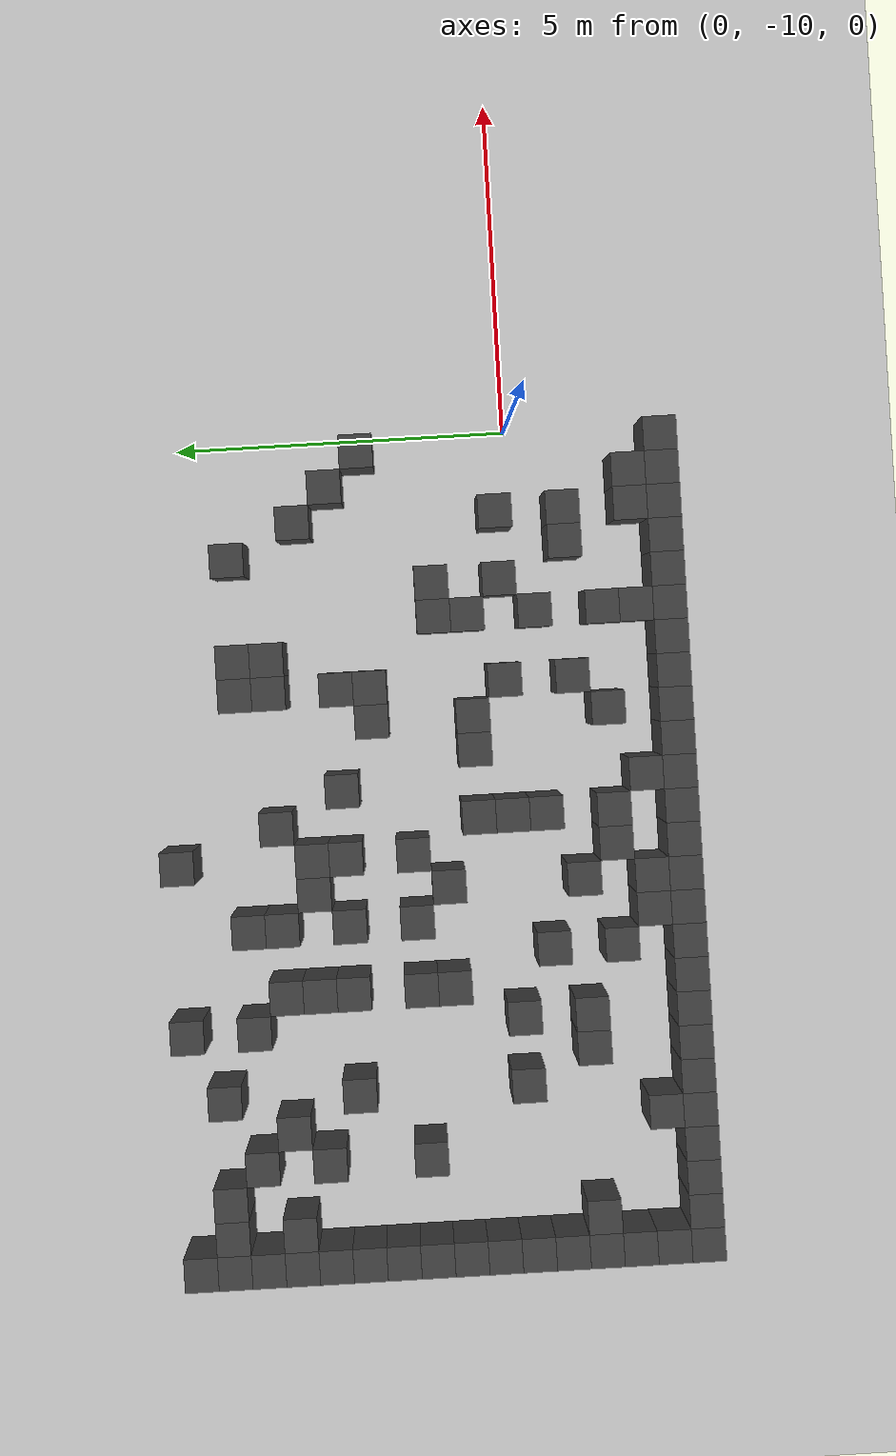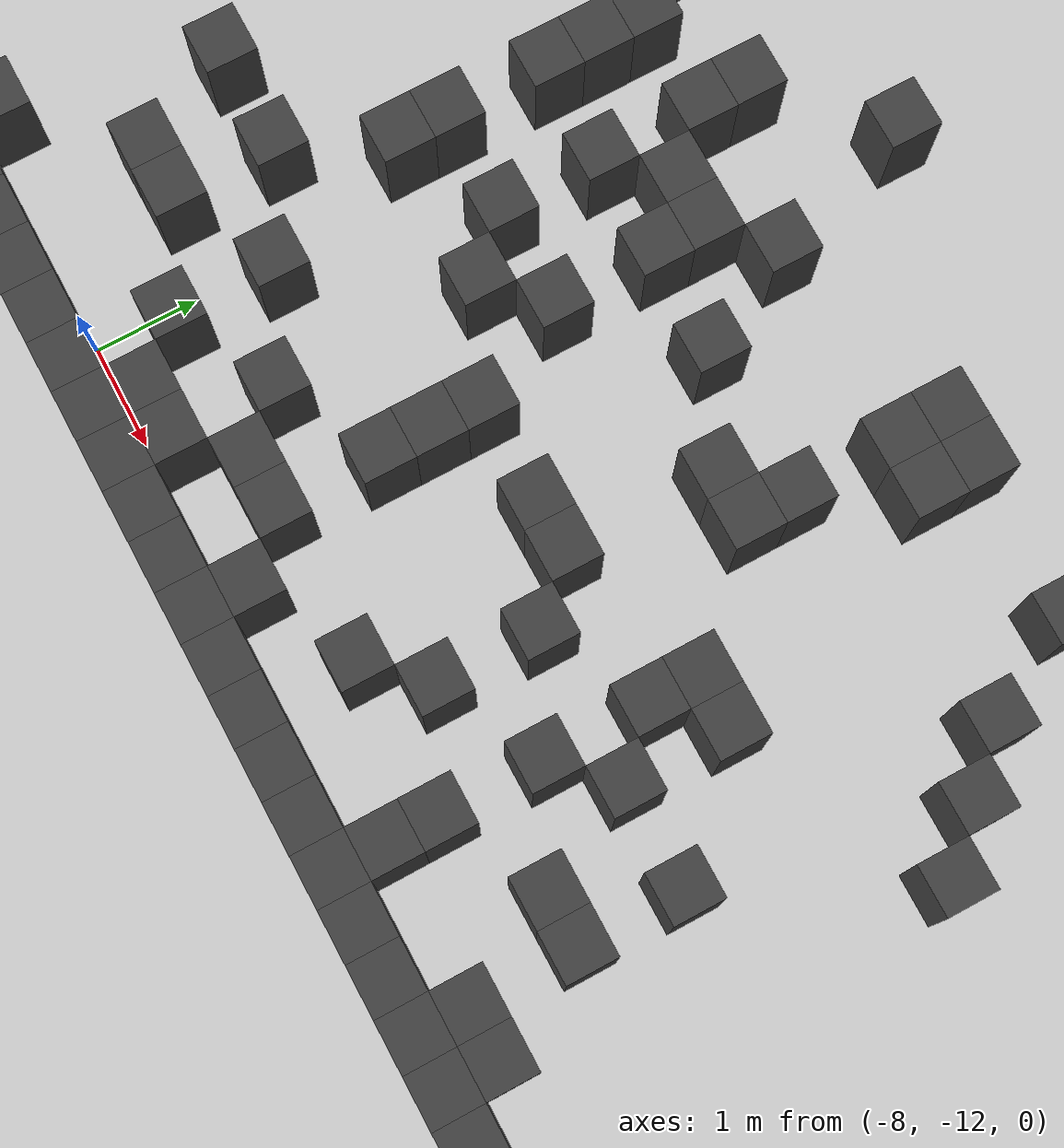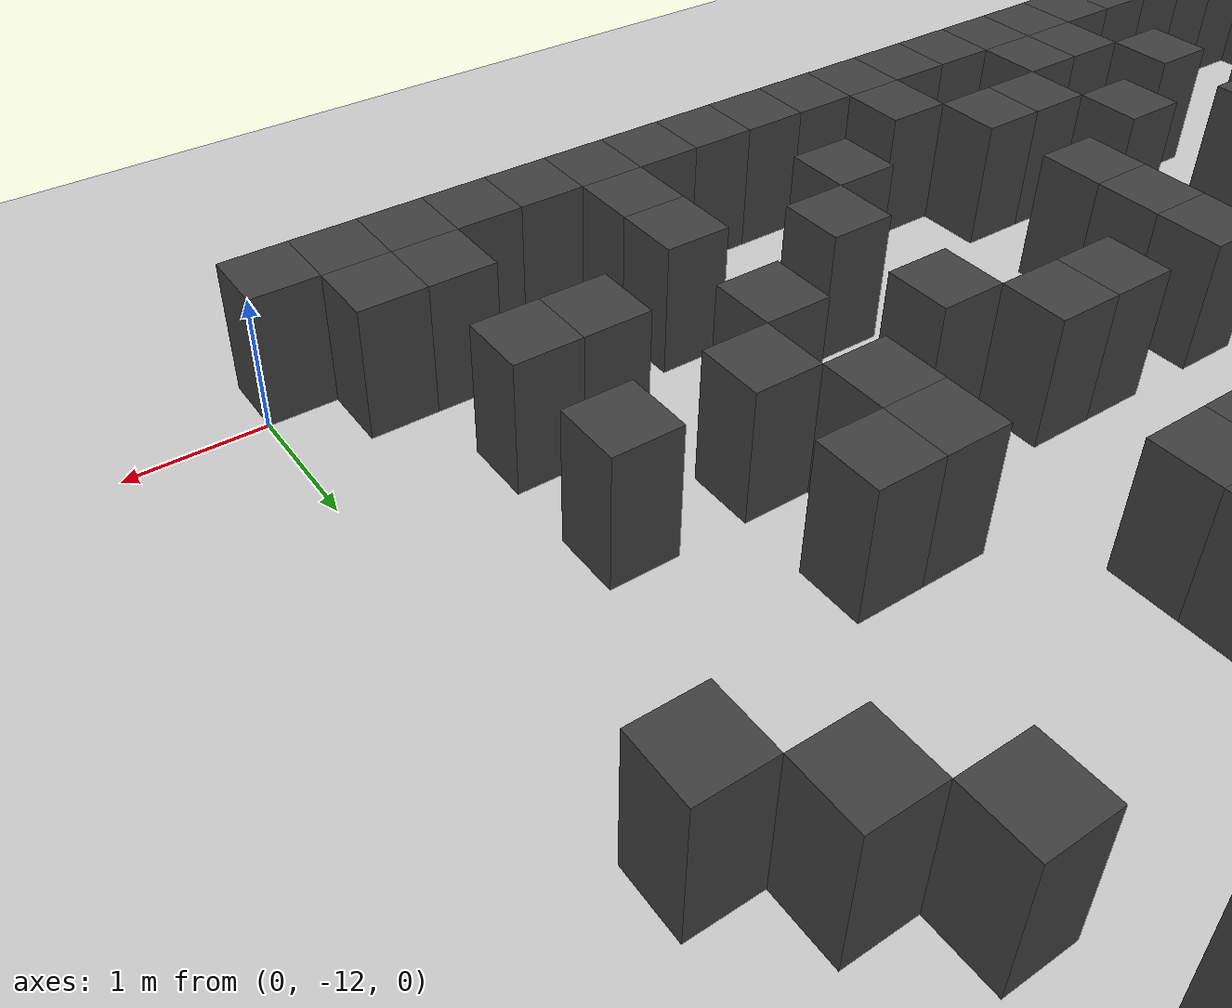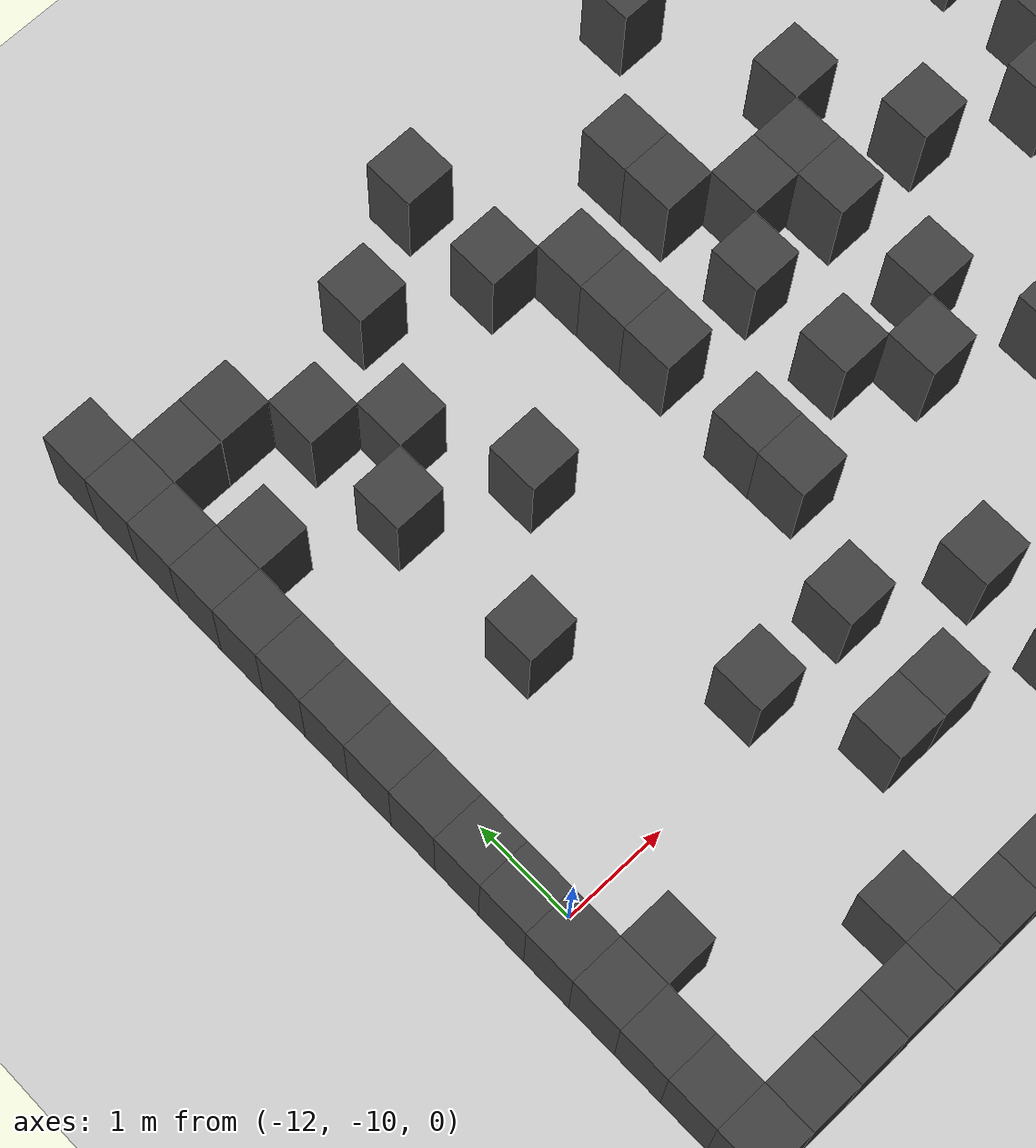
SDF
<sdf version="1.7">
 <world name="map_4302">
  <model name="ground_plane">
   <static>true</static>
   <link name="link">
    <collision name="collision">
     <geometry><plane><normal>0 0 1</normal><size>200 200</size></plane></geometry>
    </collision>
    <visual name="visual">
     <geometry><plane><normal>0 0 1</normal><size>200 200</size></plane></geometry>
     <material><ambient>0.8 0.8 0.8 1</ambient><diffuse>0.8 0.8 0.8 1</diffuse></material>
    </visual>
   </link>
  </model>
  <model name="maze_environment">
   <static>true</static>
   <link name="wall_439">
    <pose>-12.250 -4.750 0.500 0 0 0</pose>
    <collision name="col"><geometry><box><size>0.5 0.5 1.0</size></box></geometry></collision>
    <visual name="vis">
     <geometry><box><size>0.5 0.5 1.0</size></box></geometry>
     <material><ambient>0.15 0.15 0.15 1</ambient><diffuse>0.25 0.25 0.25 1</diffuse></material>
    </visual>
   </link>
   <link name="wall_440">
    <pose>-8.750 -4.750 0.500 0 0 0</pose>
    <collision name="col"><geometry><box><size>0.5 0.5 1.0</size></box></geometry></collision>
    <visual name="vis">
     <geometry><box><size>0.5 0.5 1.0</size></box></geometry>
     <material><ambient>0.15 0.15 0.15 1</ambient><diffuse>0.25 0.25 0.25 1</diffuse></material>
    </visual>
   </link>
   <link name="wall_441">
    <pose>-6.250 -4.750 0.500 0 0 0</pose>
    <collision name="col"><geometry><box><size>0.5 0.5 1.0</size></box></geometry></collision>
    <visual name="vis">
     <geometry><box><size>0.5 0.5 1.0</size></box></geometry>
     <material><ambient>0.15 0.15 0.15 1</ambient><diffuse>0.25 0.25 0.25 1</diffuse></material>
    </visual>
   </link>
   <link name="wall_451">
    <pose>-12.250 -5.250 0.500 0 0 0</pose>
    <collision name="col"><geometry><box><size>0.5 0.5 1.0</size></box></geometry></collision>
    <visual name="vis">
     <geometry><box><size>0.5 0.5 1.0</size></box></geometry>
     <material><ambient>0.15 0.15 0.15 1</ambient><diffuse>0.25 0.25 0.25 1</diffuse></material>
    </visual>
   </link>
   <link name="wall_452">
    <pose>-11.750 -5.250 0.500 0 0 0</pose>
    <collision name="col"><geometry><box><size>0.5 0.5 1.0</size></box></geometry></collision>
    <visual name="vis">
     <geometry><box><size>0.5 0.5 1.0</size></box></geometry>
     <material><ambient>0.15 0.15 0.15 1</ambient><diffuse>0.25 0.25 0.25 1</diffuse></material>
    </visual>
   </link>
   <link name="wall_453">
    <pose>-11.250 -5.250 0.500 0 0 0</pose>
    <collision name="col"><geometry><box><size>0.5 0.5 1.0</size></box></geometry></collision>
    <visual name="vis">
     <geometry><box><size>0.5 0.5 1.0</size></box></geometry>
     <material><ambient>0.15 0.15 0.15 1</ambient><diffuse>0.25 0.25 0.25 1</diffuse></material>
    </visual>
   </link>
   <link name="wall_454">
    <pose>-9.750 -5.250 0.500 0 0 0</pose>
    <collision name="col"><geometry><box><size>0.5 0.5 1.0</size></box></geometry></collision>
    <visual name="vis">
     <geometry><box><size>0.5 0.5 1.0</size></box></geometry>
     <material><ambient>0.15 0.15 0.15 1</ambient><diffuse>0.25 0.25 0.25 1</diffuse></material>
    </visual>
   </link>
   <link name="wall_461">
    <pose>-12.250 -5.750 0.500 0 0 0</pose>
    <collision name="col"><geometry><box><size>0.5 0.5 1.0</size></box></geometry></collision>
    <visual name="vis">
     <geometry><box><size>0.5 0.5 1.0</size></box></geometry>
     <material><ambient>0.15 0.15 0.15 1</ambient><diffuse>0.25 0.25 0.25 1</diffuse></material>
    </visual>
   </link>
   <link name="wall_462">
    <pose>-10.750 -5.750 0.500 0 0 0</pose>
    <collision name="col"><geometry><box><size>0.5 0.5 1.0</size></box></geometry></collision>
    <visual name="vis">
     <geometry><box><size>0.5 0.5 1.0</size></box></geometry>
     <material><ambient>0.15 0.15 0.15 1</ambient><diffuse>0.25 0.25 0.25 1</diffuse></material>
    </visual>
   </link>
   <link name="wall_463">
    <pose>-8.750 -5.750 0.500 0 0 0</pose>
    <collision name="col"><geometry><box><size>0.5 0.5 1.0</size></box></geometry></collision>
    <visual name="vis">
     <geometry><box><size>0.5 0.5 1.0</size></box></geometry>
     <material><ambient>0.15 0.15 0.15 1</ambient><diffuse>0.25 0.25 0.25 1</diffuse></material>
    </visual>
   </link>
   <link name="wall_464">
    <pose>-7.250 -5.750 0.500 0 0 0</pose>
    <collision name="col"><geometry><box><size>0.5 0.5 1.0</size></box></geometry></collision>
    <visual name="vis">
     <geometry><box><size>0.5 0.5 1.0</size></box></geometry>
     <material><ambient>0.15 0.15 0.15 1</ambient><diffuse>0.25 0.25 0.25 1</diffuse></material>
    </visual>
   </link>
   <link name="wall_465">
    <pose>-3.750 -5.750 0.500 0 0 0</pose>
    <collision name="col"><geometry><box><size>0.5 0.5 1.0</size></box></geometry></collision>
    <visual name="vis">
     <geometry><box><size>0.5 0.5 1.0</size></box></geometry>
     <material><ambient>0.15 0.15 0.15 1</ambient><diffuse>0.25 0.25 0.25 1</diffuse></material>
    </visual>
   </link>
   <link name="wall_466">
    <pose>-3.250 -5.750 0.500 0 0 0</pose>
    <collision name="col"><geometry><box><size>0.5 0.5 1.0</size></box></geometry></collision>
    <visual name="vis">
     <geometry><box><size>0.5 0.5 1.0</size></box></geometry>
     <material><ambient>0.15 0.15 0.15 1</ambient><diffuse>0.25 0.25 0.25 1</diffuse></material>
    </visual>
   </link>
   <link name="wall_467">
    <pose>-1.750 -5.750 0.500 0 0 0</pose>
    <collision name="col"><geometry><box><size>0.5 0.5 1.0</size></box></geometry></collision>
    <visual name="vis">
     <geometry><box><size>0.5 0.5 1.0</size></box></geometry>
     <material><ambient>0.15 0.15 0.15 1</ambient><diffuse>0.25 0.25 0.25 1</diffuse></material>
    </visual>
   </link>
   <link name="wall_477">
    <pose>-12.250 -6.250 0.500 0 0 0</pose>
    <collision name="col"><geometry><box><size>0.5 0.5 1.0</size></box></geometry></collision>
    <visual name="vis">
     <geometry><box><size>0.5 0.5 1.0</size></box></geometry>
     <material><ambient>0.15 0.15 0.15 1</ambient><diffuse>0.25 0.25 0.25 1</diffuse></material>
    </visual>
   </link>
   <link name="wall_478">
    <pose>-11.750 -6.250 0.500 0 0 0</pose>
    <collision name="col"><geometry><box><size>0.5 0.5 1.0</size></box></geometry></collision>
    <visual name="vis">
     <geometry><box><size>0.5 0.5 1.0</size></box></geometry>
     <material><ambient>0.15 0.15 0.15 1</ambient><diffuse>0.25 0.25 0.25 1</diffuse></material>
    </visual>
   </link>
   <link name="wall_479">
    <pose>-10.250 -6.250 0.500 0 0 0</pose>
    <collision name="col"><geometry><box><size>0.5 0.5 1.0</size></box></geometry></collision>
    <visual name="vis">
     <geometry><box><size>0.5 0.5 1.0</size></box></geometry>
     <material><ambient>0.15 0.15 0.15 1</ambient><diffuse>0.25 0.25 0.25 1</diffuse></material>
    </visual>
   </link>
   <link name="wall_480">
    <pose>-8.250 -6.250 0.500 0 0 0</pose>
    <collision name="col"><geometry><box><size>0.5 0.5 1.0</size></box></geometry></collision>
    <visual name="vis">
     <geometry><box><size>0.5 0.5 1.0</size></box></geometry>
     <material><ambient>0.15 0.15 0.15 1</ambient><diffuse>0.25 0.25 0.25 1</diffuse></material>
    </visual>
   </link>
   <link name="wall_481">
    <pose>-7.250 -6.250 0.500 0 0 0</pose>
    <collision name="col"><geometry><box><size>0.5 0.5 1.0</size></box></geometry></collision>
    <visual name="vis">
     <geometry><box><size>0.5 0.5 1.0</size></box></geometry>
     <material><ambient>0.15 0.15 0.15 1</ambient><diffuse>0.25 0.25 0.25 1</diffuse></material>
    </visual>
   </link>
   <link name="wall_482">
    <pose>-5.750 -6.250 0.500 0 0 0</pose>
    <collision name="col"><geometry><box><size>0.5 0.5 1.0</size></box></geometry></collision>
    <visual name="vis">
     <geometry><box><size>0.5 0.5 1.0</size></box></geometry>
     <material><ambient>0.15 0.15 0.15 1</ambient><diffuse>0.25 0.25 0.25 1</diffuse></material>
    </visual>
   </link>
   <link name="wall_483">
    <pose>-3.750 -6.250 0.500 0 0 0</pose>
    <collision name="col"><geometry><box><size>0.5 0.5 1.0</size></box></geometry></collision>
    <visual name="vis">
     <geometry><box><size>0.5 0.5 1.0</size></box></geometry>
     <material><ambient>0.15 0.15 0.15 1</ambient><diffuse>0.25 0.25 0.25 1</diffuse></material>
    </visual>
   </link>
   <link name="wall_484">
    <pose>-3.250 -6.250 0.500 0 0 0</pose>
    <collision name="col"><geometry><box><size>0.5 0.5 1.0</size></box></geometry></collision>
    <visual name="vis">
     <geometry><box><size>0.5 0.5 1.0</size></box></geometry>
     <material><ambient>0.15 0.15 0.15 1</ambient><diffuse>0.25 0.25 0.25 1</diffuse></material>
    </visual>
   </link>
   <link name="wall_494">
    <pose>-12.250 -6.750 0.500 0 0 0</pose>
    <collision name="col"><geometry><box><size>0.5 0.5 1.0</size></box></geometry></collision>
    <visual name="vis">
     <geometry><box><size>0.5 0.5 1.0</size></box></geometry>
     <material><ambient>0.15 0.15 0.15 1</ambient><diffuse>0.25 0.25 0.25 1</diffuse></material>
    </visual>
   </link>
   <link name="wall_495">
    <pose>-10.750 -6.750 0.500 0 0 0</pose>
    <collision name="col"><geometry><box><size>0.5 0.5 1.0</size></box></geometry></collision>
    <visual name="vis">
     <geometry><box><size>0.5 0.5 1.0</size></box></geometry>
     <material><ambient>0.15 0.15 0.15 1</ambient><diffuse>0.25 0.25 0.25 1</diffuse></material>
    </visual>
   </link>
   <link name="wall_496">
    <pose>-8.250 -6.750 0.500 0 0 0</pose>
    <collision name="col"><geometry><box><size>0.5 0.5 1.0</size></box></geometry></collision>
    <visual name="vis">
     <geometry><box><size>0.5 0.5 1.0</size></box></geometry>
     <material><ambient>0.15 0.15 0.15 1</ambient><diffuse>0.25 0.25 0.25 1</diffuse></material>
    </visual>
   </link>
   <link name="wall_497">
    <pose>-6.750 -6.750 0.500 0 0 0</pose>
    <collision name="col"><geometry><box><size>0.5 0.5 1.0</size></box></geometry></collision>
    <visual name="vis">
     <geometry><box><size>0.5 0.5 1.0</size></box></geometry>
     <material><ambient>0.15 0.15 0.15 1</ambient><diffuse>0.25 0.25 0.25 1</diffuse></material>
    </visual>
   </link>
   <link name="wall_498">
    <pose>-6.250 -6.750 0.500 0 0 0</pose>
    <collision name="col"><geometry><box><size>0.5 0.5 1.0</size></box></geometry></collision>
    <visual name="vis">
     <geometry><box><size>0.5 0.5 1.0</size></box></geometry>
     <material><ambient>0.15 0.15 0.15 1</ambient><diffuse>0.25 0.25 0.25 1</diffuse></material>
    </visual>
   </link>
   <link name="wall_499">
    <pose>-1.250 -6.750 0.500 0 0 0</pose>
    <collision name="col"><geometry><box><size>0.5 0.5 1.0</size></box></geometry></collision>
    <visual name="vis">
     <geometry><box><size>0.5 0.5 1.0</size></box></geometry>
     <material><ambient>0.15 0.15 0.15 1</ambient><diffuse>0.25 0.25 0.25 1</diffuse></material>
    </visual>
   </link>
   <link name="wall_507">
    <pose>-12.250 -7.250 0.500 0 0 0</pose>
    <collision name="col"><geometry><box><size>0.5 0.5 1.0</size></box></geometry></collision>
    <visual name="vis">
     <geometry><box><size>0.5 0.5 1.0</size></box></geometry>
     <material><ambient>0.15 0.15 0.15 1</ambient><diffuse>0.25 0.25 0.25 1</diffuse></material>
    </visual>
   </link>
   <link name="wall_508">
    <pose>-9.750 -7.250 0.500 0 0 0</pose>
    <collision name="col"><geometry><box><size>0.5 0.5 1.0</size></box></geometry></collision>
    <visual name="vis">
     <geometry><box><size>0.5 0.5 1.0</size></box></geometry>
     <material><ambient>0.15 0.15 0.15 1</ambient><diffuse>0.25 0.25 0.25 1</diffuse></material>
    </visual>
   </link>
   <link name="wall_509">
    <pose>-8.250 -7.250 0.500 0 0 0</pose>
    <collision name="col"><geometry><box><size>0.5 0.5 1.0</size></box></geometry></collision>
    <visual name="vis">
     <geometry><box><size>0.5 0.5 1.0</size></box></geometry>
     <material><ambient>0.15 0.15 0.15 1</ambient><diffuse>0.25 0.25 0.25 1</diffuse></material>
    </visual>
   </link>
   <link name="wall_510">
    <pose>-7.250 -7.250 0.500 0 0 0</pose>
    <collision name="col"><geometry><box><size>0.5 0.5 1.0</size></box></geometry></collision>
    <visual name="vis">
     <geometry><box><size>0.5 0.5 1.0</size></box></geometry>
     <material><ambient>0.15 0.15 0.15 1</ambient><diffuse>0.25 0.25 0.25 1</diffuse></material>
    </visual>
   </link>
   <link name="wall_511">
    <pose>-6.250 -7.250 0.500 0 0 0</pose>
    <collision name="col"><geometry><box><size>0.5 0.5 1.0</size></box></geometry></collision>
    <visual name="vis">
     <geometry><box><size>0.5 0.5 1.0</size></box></geometry>
     <material><ambient>0.15 0.15 0.15 1</ambient><diffuse>0.25 0.25 0.25 1</diffuse></material>
    </visual>
   </link>
   <link name="wall_512">
    <pose>-5.250 -7.250 0.500 0 0 0</pose>
    <collision name="col"><geometry><box><size>0.5 0.5 1.0</size></box></geometry></collision>
    <visual name="vis">
     <geometry><box><size>0.5 0.5 1.0</size></box></geometry>
     <material><ambient>0.15 0.15 0.15 1</ambient><diffuse>0.25 0.25 0.25 1</diffuse></material>
    </visual>
   </link>
   <link name="wall_513">
    <pose>-3.750 -7.250 0.500 0 0 0</pose>
    <collision name="col"><geometry><box><size>0.5 0.5 1.0</size></box></geometry></collision>
    <visual name="vis">
     <geometry><box><size>0.5 0.5 1.0</size></box></geometry>
     <material><ambient>0.15 0.15 0.15 1</ambient><diffuse>0.25 0.25 0.25 1</diffuse></material>
    </visual>
   </link>
   <link name="wall_514">
    <pose>-0.750 -7.250 0.500 0 0 0</pose>
    <collision name="col"><geometry><box><size>0.5 0.5 1.0</size></box></geometry></collision>
    <visual name="vis">
     <geometry><box><size>0.5 0.5 1.0</size></box></geometry>
     <material><ambient>0.15 0.15 0.15 1</ambient><diffuse>0.25 0.25 0.25 1</diffuse></material>
    </visual>
   </link>
   <link name="wall_517">
    <pose>-12.250 -7.750 0.500 0 0 0</pose>
    <collision name="col"><geometry><box><size>0.5 0.5 1.0</size></box></geometry></collision>
    <visual name="vis">
     <geometry><box><size>0.5 0.5 1.0</size></box></geometry>
     <material><ambient>0.15 0.15 0.15 1</ambient><diffuse>0.25 0.25 0.25 1</diffuse></material>
    </visual>
   </link>
   <link name="wall_518">
    <pose>-4.250 -7.750 0.500 0 0 0</pose>
    <collision name="col"><geometry><box><size>0.5 0.5 1.0</size></box></geometry></collision>
    <visual name="vis">
     <geometry><box><size>0.5 0.5 1.0</size></box></geometry>
     <material><ambient>0.15 0.15 0.15 1</ambient><diffuse>0.25 0.25 0.25 1</diffuse></material>
    </visual>
   </link>
   <link name="wall_519">
    <pose>-3.750 -7.750 0.500 0 0 0</pose>
    <collision name="col"><geometry><box><size>0.5 0.5 1.0</size></box></geometry></collision>
    <visual name="vis">
     <geometry><box><size>0.5 0.5 1.0</size></box></geometry>
     <material><ambient>0.15 0.15 0.15 1</ambient><diffuse>0.25 0.25 0.25 1</diffuse></material>
    </visual>
   </link>
   <link name="wall_520">
    <pose>-0.250 -7.750 0.500 0 0 0</pose>
    <collision name="col"><geometry><box><size>0.5 0.5 1.0</size></box></geometry></collision>
    <visual name="vis">
     <geometry><box><size>0.5 0.5 1.0</size></box></geometry>
     <material><ambient>0.15 0.15 0.15 1</ambient><diffuse>0.25 0.25 0.25 1</diffuse></material>
    </visual>
   </link>
   <link name="wall_527">
    <pose>-12.250 -8.250 0.500 0 0 0</pose>
    <collision name="col"><geometry><box><size>0.5 0.5 1.0</size></box></geometry></collision>
    <visual name="vis">
     <geometry><box><size>0.5 0.5 1.0</size></box></geometry>
     <material><ambient>0.15 0.15 0.15 1</ambient><diffuse>0.25 0.25 0.25 1</diffuse></material>
    </visual>
   </link>
   <link name="wall_528">
    <pose>-10.750 -8.250 0.500 0 0 0</pose>
    <collision name="col"><geometry><box><size>0.5 0.5 1.0</size></box></geometry></collision>
    <visual name="vis">
     <geometry><box><size>0.5 0.5 1.0</size></box></geometry>
     <material><ambient>0.15 0.15 0.15 1</ambient><diffuse>0.25 0.25 0.25 1</diffuse></material>
    </visual>
   </link>
   <link name="wall_529">
    <pose>-8.250 -8.250 0.500 0 0 0</pose>
    <collision name="col"><geometry><box><size>0.5 0.5 1.0</size></box></geometry></collision>
    <visual name="vis">
     <geometry><box><size>0.5 0.5 1.0</size></box></geometry>
     <material><ambient>0.15 0.15 0.15 1</ambient><diffuse>0.25 0.25 0.25 1</diffuse></material>
    </visual>
   </link>
   <link name="wall_530">
    <pose>-7.250 -8.250 0.500 0 0 0</pose>
    <collision name="col"><geometry><box><size>0.5 0.5 1.0</size></box></geometry></collision>
    <visual name="vis">
     <geometry><box><size>0.5 0.5 1.0</size></box></geometry>
     <material><ambient>0.15 0.15 0.15 1</ambient><diffuse>0.25 0.25 0.25 1</diffuse></material>
    </visual>
   </link>
   <link name="wall_531">
    <pose>-6.250 -8.250 0.500 0 0 0</pose>
    <collision name="col"><geometry><box><size>0.5 0.5 1.0</size></box></geometry></collision>
    <visual name="vis">
     <geometry><box><size>0.5 0.5 1.0</size></box></geometry>
     <material><ambient>0.15 0.15 0.15 1</ambient><diffuse>0.25 0.25 0.25 1</diffuse></material>
    </visual>
   </link>
   <link name="wall_539">
    <pose>-12.250 -8.750 0.500 0 0 0</pose>
    <collision name="col"><geometry><box><size>0.5 0.5 1.0</size></box></geometry></collision>
    <visual name="vis">
     <geometry><box><size>0.5 0.5 1.0</size></box></geometry>
     <material><ambient>0.15 0.15 0.15 1</ambient><diffuse>0.25 0.25 0.25 1</diffuse></material>
    </visual>
   </link>
   <link name="wall_540">
    <pose>-8.250 -8.750 0.500 0 0 0</pose>
    <collision name="col"><geometry><box><size>0.5 0.5 1.0</size></box></geometry></collision>
    <visual name="vis">
     <geometry><box><size>0.5 0.5 1.0</size></box></geometry>
     <material><ambient>0.15 0.15 0.15 1</ambient><diffuse>0.25 0.25 0.25 1</diffuse></material>
    </visual>
   </link>
   <link name="wall_541">
    <pose>-6.750 -8.750 0.500 0 0 0</pose>
    <collision name="col"><geometry><box><size>0.5 0.5 1.0</size></box></geometry></collision>
    <visual name="vis">
     <geometry><box><size>0.5 0.5 1.0</size></box></geometry>
     <material><ambient>0.15 0.15 0.15 1</ambient><diffuse>0.25 0.25 0.25 1</diffuse></material>
    </visual>
   </link>
   <link name="wall_542">
    <pose>-2.750 -8.750 0.500 0 0 0</pose>
    <collision name="col"><geometry><box><size>0.5 0.5 1.0</size></box></geometry></collision>
    <visual name="vis">
     <geometry><box><size>0.5 0.5 1.0</size></box></geometry>
     <material><ambient>0.15 0.15 0.15 1</ambient><diffuse>0.25 0.25 0.25 1</diffuse></material>
    </visual>
   </link>
   <link name="wall_543">
    <pose>-2.250 -8.750 0.500 0 0 0</pose>
    <collision name="col"><geometry><box><size>0.5 0.5 1.0</size></box></geometry></collision>
    <visual name="vis">
     <geometry><box><size>0.5 0.5 1.0</size></box></geometry>
     <material><ambient>0.15 0.15 0.15 1</ambient><diffuse>0.25 0.25 0.25 1</diffuse></material>
    </visual>
   </link>
   <link name="wall_551">
    <pose>-12.250 -9.250 0.500 0 0 0</pose>
    <collision name="col"><geometry><box><size>0.5 0.5 1.0</size></box></geometry></collision>
    <visual name="vis">
     <geometry><box><size>0.5 0.5 1.0</size></box></geometry>
     <material><ambient>0.15 0.15 0.15 1</ambient><diffuse>0.25 0.25 0.25 1</diffuse></material>
    </visual>
   </link>
   <link name="wall_552">
    <pose>-5.750 -9.250 0.500 0 0 0</pose>
    <collision name="col"><geometry><box><size>0.5 0.5 1.0</size></box></geometry></collision>
    <visual name="vis">
     <geometry><box><size>0.5 0.5 1.0</size></box></geometry>
     <material><ambient>0.15 0.15 0.15 1</ambient><diffuse>0.25 0.25 0.25 1</diffuse></material>
    </visual>
   </link>
   <link name="wall_553">
    <pose>-4.750 -9.250 0.500 0 0 0</pose>
    <collision name="col"><geometry><box><size>0.5 0.5 1.0</size></box></geometry></collision>
    <visual name="vis">
     <geometry><box><size>0.5 0.5 1.0</size></box></geometry>
     <material><ambient>0.15 0.15 0.15 1</ambient><diffuse>0.25 0.25 0.25 1</diffuse></material>
    </visual>
   </link>
   <link name="wall_554">
    <pose>-4.250 -9.250 0.500 0 0 0</pose>
    <collision name="col"><geometry><box><size>0.5 0.5 1.0</size></box></geometry></collision>
    <visual name="vis">
     <geometry><box><size>0.5 0.5 1.0</size></box></geometry>
     <material><ambient>0.15 0.15 0.15 1</ambient><diffuse>0.25 0.25 0.25 1</diffuse></material>
    </visual>
   </link>
   <link name="wall_555">
    <pose>-2.750 -9.250 0.500 0 0 0</pose>
    <collision name="col"><geometry><box><size>0.5 0.5 1.0</size></box></geometry></collision>
    <visual name="vis">
     <geometry><box><size>0.5 0.5 1.0</size></box></geometry>
     <material><ambient>0.15 0.15 0.15 1</ambient><diffuse>0.25 0.25 0.25 1</diffuse></material>
    </visual>
   </link>
   <link name="wall_562">
    <pose>-12.250 -9.750 0.500 0 0 0</pose>
    <collision name="col"><geometry><box><size>0.5 0.5 1.0</size></box></geometry></collision>
    <visual name="vis">
     <geometry><box><size>0.5 0.5 1.0</size></box></geometry>
     <material><ambient>0.15 0.15 0.15 1</ambient><diffuse>0.25 0.25 0.25 1</diffuse></material>
    </visual>
   </link>
   <link name="wall_563">
    <pose>-9.750 -9.750 0.500 0 0 0</pose>
    <collision name="col"><geometry><box><size>0.5 0.5 1.0</size></box></geometry></collision>
    <visual name="vis">
     <geometry><box><size>0.5 0.5 1.0</size></box></geometry>
     <material><ambient>0.15 0.15 0.15 1</ambient><diffuse>0.25 0.25 0.25 1</diffuse></material>
    </visual>
   </link>
   <link name="wall_564">
    <pose>-8.750 -9.750 0.500 0 0 0</pose>
    <collision name="col"><geometry><box><size>0.5 0.5 1.0</size></box></geometry></collision>
    <visual name="vis">
     <geometry><box><size>0.5 0.5 1.0</size></box></geometry>
     <material><ambient>0.15 0.15 0.15 1</ambient><diffuse>0.25 0.25 0.25 1</diffuse></material>
    </visual>
   </link>
   <link name="wall_565">
    <pose>-5.750 -9.750 0.500 0 0 0</pose>
    <collision name="col"><geometry><box><size>0.5 0.5 1.0</size></box></geometry></collision>
    <visual name="vis">
     <geometry><box><size>0.5 0.5 1.0</size></box></geometry>
     <material><ambient>0.15 0.15 0.15 1</ambient><diffuse>0.25 0.25 0.25 1</diffuse></material>
    </visual>
   </link>
   <link name="wall_566">
    <pose>-3.750 -9.750 0.500 0 0 0</pose>
    <collision name="col"><geometry><box><size>0.5 0.5 1.0</size></box></geometry></collision>
    <visual name="vis">
     <geometry><box><size>0.5 0.5 1.0</size></box></geometry>
     <material><ambient>0.15 0.15 0.15 1</ambient><diffuse>0.25 0.25 0.25 1</diffuse></material>
    </visual>
   </link>
   <link name="wall_567">
    <pose>-2.250 -9.750 0.500 0 0 0</pose>
    <collision name="col"><geometry><box><size>0.5 0.5 1.0</size></box></geometry></collision>
    <visual name="vis">
     <geometry><box><size>0.5 0.5 1.0</size></box></geometry>
     <material><ambient>0.15 0.15 0.15 1</ambient><diffuse>0.25 0.25 0.25 1</diffuse></material>
    </visual>
   </link>
   <link name="wall_568">
    <pose>-1.250 -9.750 0.500 0 0 0</pose>
    <collision name="col"><geometry><box><size>0.5 0.5 1.0</size></box></geometry></collision>
    <visual name="vis">
     <geometry><box><size>0.5 0.5 1.0</size></box></geometry>
     <material><ambient>0.15 0.15 0.15 1</ambient><diffuse>0.25 0.25 0.25 1</diffuse></material>
    </visual>
   </link>
   <link name="wall_576">
    <pose>-12.250 -10.250 0.500 0 0 0</pose>
    <collision name="col"><geometry><box><size>0.5 0.5 1.0</size></box></geometry></collision>
    <visual name="vis">
     <geometry><box><size>0.5 0.5 1.0</size></box></geometry>
     <material><ambient>0.15 0.15 0.15 1</ambient><diffuse>0.25 0.25 0.25 1</diffuse></material>
    </visual>
   </link>
   <link name="wall_577">
    <pose>-7.750 -10.250 0.500 0 0 0</pose>
    <collision name="col"><geometry><box><size>0.5 0.5 1.0</size></box></geometry></collision>
    <visual name="vis">
     <geometry><box><size>0.5 0.5 1.0</size></box></geometry>
     <material><ambient>0.15 0.15 0.15 1</ambient><diffuse>0.25 0.25 0.25 1</diffuse></material>
    </visual>
   </link>
   <link name="wall_578">
    <pose>-5.750 -10.250 0.500 0 0 0</pose>
    <collision name="col"><geometry><box><size>0.5 0.5 1.0</size></box></geometry></collision>
    <visual name="vis">
     <geometry><box><size>0.5 0.5 1.0</size></box></geometry>
     <material><ambient>0.15 0.15 0.15 1</ambient><diffuse>0.25 0.25 0.25 1</diffuse></material>
    </visual>
   </link>
   <link name="wall_579">
    <pose>-2.750 -10.250 0.500 0 0 0</pose>
    <collision name="col"><geometry><box><size>0.5 0.5 1.0</size></box></geometry></collision>
    <visual name="vis">
     <geometry><box><size>0.5 0.5 1.0</size></box></geometry>
     <material><ambient>0.15 0.15 0.15 1</ambient><diffuse>0.25 0.25 0.25 1</diffuse></material>
    </visual>
   </link>
   <link name="wall_584">
    <pose>-12.250 -10.750 0.500 0 0 0</pose>
    <collision name="col"><geometry><box><size>0.5 0.5 1.0</size></box></geometry></collision>
    <visual name="vis">
     <geometry><box><size>0.5 0.5 1.0</size></box></geometry>
     <material><ambient>0.15 0.15 0.15 1</ambient><diffuse>0.25 0.25 0.25 1</diffuse></material>
    </visual>
   </link>
   <link name="wall_585">
    <pose>-11.750 -10.750 0.500 0 0 0</pose>
    <collision name="col"><geometry><box><size>0.5 0.5 1.0</size></box></geometry></collision>
    <visual name="vis">
     <geometry><box><size>0.5 0.5 1.0</size></box></geometry>
     <material><ambient>0.15 0.15 0.15 1</ambient><diffuse>0.25 0.25 0.25 1</diffuse></material>
    </visual>
   </link>
   <link name="wall_586">
    <pose>-9.250 -10.750 0.500 0 0 0</pose>
    <collision name="col"><geometry><box><size>0.5 0.5 1.0</size></box></geometry></collision>
    <visual name="vis">
     <geometry><box><size>0.5 0.5 1.0</size></box></geometry>
     <material><ambient>0.15 0.15 0.15 1</ambient><diffuse>0.25 0.25 0.25 1</diffuse></material>
    </visual>
   </link>
   <link name="wall_587">
    <pose>-8.750 -10.750 0.500 0 0 0</pose>
    <collision name="col"><geometry><box><size>0.5 0.5 1.0</size></box></geometry></collision>
    <visual name="vis">
     <geometry><box><size>0.5 0.5 1.0</size></box></geometry>
     <material><ambient>0.15 0.15 0.15 1</ambient><diffuse>0.25 0.25 0.25 1</diffuse></material>
    </visual>
   </link>
   <link name="wall_588">
    <pose>-6.750 -10.750 0.500 0 0 0</pose>
    <collision name="col"><geometry><box><size>0.5 0.5 1.0</size></box></geometry></collision>
    <visual name="vis">
     <geometry><box><size>0.5 0.5 1.0</size></box></geometry>
     <material><ambient>0.15 0.15 0.15 1</ambient><diffuse>0.25 0.25 0.25 1</diffuse></material>
    </visual>
   </link>
   <link name="wall_589">
    <pose>-3.750 -10.750 0.500 0 0 0</pose>
    <collision name="col"><geometry><box><size>0.5 0.5 1.0</size></box></geometry></collision>
    <visual name="vis">
     <geometry><box><size>0.5 0.5 1.0</size></box></geometry>
     <material><ambient>0.15 0.15 0.15 1</ambient><diffuse>0.25 0.25 0.25 1</diffuse></material>
    </visual>
   </link>
   <link name="wall_590">
    <pose>-1.750 -10.750 0.500 0 0 0</pose>
    <collision name="col"><geometry><box><size>0.5 0.5 1.0</size></box></geometry></collision>
    <visual name="vis">
     <geometry><box><size>0.5 0.5 1.0</size></box></geometry>
     <material><ambient>0.15 0.15 0.15 1</ambient><diffuse>0.25 0.25 0.25 1</diffuse></material>
    </visual>
   </link>
   <link name="wall_591">
    <pose>-1.250 -10.750 0.500 0 0 0</pose>
    <collision name="col"><geometry><box><size>0.5 0.5 1.0</size></box></geometry></collision>
    <visual name="vis">
     <geometry><box><size>0.5 0.5 1.0</size></box></geometry>
     <material><ambient>0.15 0.15 0.15 1</ambient><diffuse>0.25 0.25 0.25 1</diffuse></material>
    </visual>
   </link>
   <link name="wall_602">
    <pose>-12.250 -11.250 0.500 0 0 0</pose>
    <collision name="col"><geometry><box><size>0.5 0.5 1.0</size></box></geometry></collision>
    <visual name="vis">
     <geometry><box><size>0.5 0.5 1.0</size></box></geometry>
     <material><ambient>0.15 0.15 0.15 1</ambient><diffuse>0.25 0.25 0.25 1</diffuse></material>
    </visual>
   </link>
   <link name="wall_603">
    <pose>-7.750 -11.250 0.500 0 0 0</pose>
    <collision name="col"><geometry><box><size>0.5 0.5 1.0</size></box></geometry></collision>
    <visual name="vis">
     <geometry><box><size>0.5 0.5 1.0</size></box></geometry>
     <material><ambient>0.15 0.15 0.15 1</ambient><diffuse>0.25 0.25 0.25 1</diffuse></material>
    </visual>
   </link>
   <link name="wall_604">
    <pose>-6.250 -11.250 0.500 0 0 0</pose>
    <collision name="col"><geometry><box><size>0.5 0.5 1.0</size></box></geometry></collision>
    <visual name="vis">
     <geometry><box><size>0.5 0.5 1.0</size></box></geometry>
     <material><ambient>0.15 0.15 0.15 1</ambient><diffuse>0.25 0.25 0.25 1</diffuse></material>
    </visual>
   </link>
   <link name="wall_605">
    <pose>-5.750 -11.250 0.500 0 0 0</pose>
    <collision name="col"><geometry><box><size>0.5 0.5 1.0</size></box></geometry></collision>
    <visual name="vis">
     <geometry><box><size>0.5 0.5 1.0</size></box></geometry>
     <material><ambient>0.15 0.15 0.15 1</ambient><diffuse>0.25 0.25 0.25 1</diffuse></material>
    </visual>
   </link>
   <link name="wall_606">
    <pose>-4.250 -11.250 0.500 0 0 0</pose>
    <collision name="col"><geometry><box><size>0.5 0.5 1.0</size></box></geometry></collision>
    <visual name="vis">
     <geometry><box><size>0.5 0.5 1.0</size></box></geometry>
     <material><ambient>0.15 0.15 0.15 1</ambient><diffuse>0.25 0.25 0.25 1</diffuse></material>
    </visual>
   </link>
   <link name="wall_607">
    <pose>-2.750 -11.250 0.500 0 0 0</pose>
    <collision name="col"><geometry><box><size>0.5 0.5 1.0</size></box></geometry></collision>
    <visual name="vis">
     <geometry><box><size>0.5 0.5 1.0</size></box></geometry>
     <material><ambient>0.15 0.15 0.15 1</ambient><diffuse>0.25 0.25 0.25 1</diffuse></material>
    </visual>
   </link>
   <link name="wall_613">
    <pose>-12.250 -11.750 0.500 0 0 0</pose>
    <collision name="col"><geometry><box><size>0.5 0.5 1.0</size></box></geometry></collision>
    <visual name="vis">
     <geometry><box><size>0.5 0.5 1.0</size></box></geometry>
     <material><ambient>0.15 0.15 0.15 1</ambient><diffuse>0.25 0.25 0.25 1</diffuse></material>
    </visual>
   </link>
   <link name="wall_614">
    <pose>-10.250 -11.750 0.500 0 0 0</pose>
    <collision name="col"><geometry><box><size>0.5 0.5 1.0</size></box></geometry></collision>
    <visual name="vis">
     <geometry><box><size>0.5 0.5 1.0</size></box></geometry>
     <material><ambient>0.15 0.15 0.15 1</ambient><diffuse>0.25 0.25 0.25 1</diffuse></material>
    </visual>
   </link>
   <link name="wall_615">
    <pose>-7.250 -11.750 0.500 0 0 0</pose>
    <collision name="col"><geometry><box><size>0.5 0.5 1.0</size></box></geometry></collision>
    <visual name="vis">
     <geometry><box><size>0.5 0.5 1.0</size></box></geometry>
     <material><ambient>0.15 0.15 0.15 1</ambient><diffuse>0.25 0.25 0.25 1</diffuse></material>
    </visual>
   </link>
   <link name="wall_616">
    <pose>-6.750 -11.750 0.500 0 0 0</pose>
    <collision name="col"><geometry><box><size>0.5 0.5 1.0</size></box></geometry></collision>
    <visual name="vis">
     <geometry><box><size>0.5 0.5 1.0</size></box></geometry>
     <material><ambient>0.15 0.15 0.15 1</ambient><diffuse>0.25 0.25 0.25 1</diffuse></material>
    </visual>
   </link>
   <link name="wall_617">
    <pose>-5.250 -11.750 0.500 0 0 0</pose>
    <collision name="col"><geometry><box><size>0.5 0.5 1.0</size></box></geometry></collision>
    <visual name="vis">
     <geometry><box><size>0.5 0.5 1.0</size></box></geometry>
     <material><ambient>0.15 0.15 0.15 1</ambient><diffuse>0.25 0.25 0.25 1</diffuse></material>
    </visual>
   </link>
   <link name="wall_618">
    <pose>-2.750 -11.750 0.500 0 0 0</pose>
    <collision name="col"><geometry><box><size>0.5 0.5 1.0</size></box></geometry></collision>
    <visual name="vis">
     <geometry><box><size>0.5 0.5 1.0</size></box></geometry>
     <material><ambient>0.15 0.15 0.15 1</ambient><diffuse>0.25 0.25 0.25 1</diffuse></material>
    </visual>
   </link>
   <link name="wall_619">
    <pose>-1.250 -11.750 0.500 0 0 0</pose>
    <collision name="col"><geometry><box><size>0.5 0.5 1.0</size></box></geometry></collision>
    <visual name="vis">
     <geometry><box><size>0.5 0.5 1.0</size></box></geometry>
     <material><ambient>0.15 0.15 0.15 1</ambient><diffuse>0.25 0.25 0.25 1</diffuse></material>
    </visual>
   </link>
   <link name="wall_620">
    <pose>-0.750 -11.750 0.500 0 0 0</pose>
    <collision name="col"><geometry><box><size>0.5 0.5 1.0</size></box></geometry></collision>
    <visual name="vis">
     <geometry><box><size>0.5 0.5 1.0</size></box></geometry>
     <material><ambient>0.15 0.15 0.15 1</ambient><diffuse>0.25 0.25 0.25 1</diffuse></material>
    </visual>
   </link>
   <link name="wall_626">
    <pose>-12.250 -12.250 0.500 0 0 0</pose>
    <collision name="col"><geometry><box><size>0.5 0.5 1.0</size></box></geometry></collision>
    <visual name="vis">
     <geometry><box><size>0.5 0.5 1.0</size></box></geometry>
     <material><ambient>0.15 0.15 0.15 1</ambient><diffuse>0.25 0.25 0.25 1</diffuse></material>
    </visual>
   </link>
   <link name="wall_627">
    <pose>-11.750 -12.250 0.500 0 0 0</pose>
    <collision name="col"><geometry><box><size>0.5 0.5 1.0</size></box></geometry></collision>
    <visual name="vis">
     <geometry><box><size>0.5 0.5 1.0</size></box></geometry>
     <material><ambient>0.15 0.15 0.15 1</ambient><diffuse>0.25 0.25 0.25 1</diffuse></material>
    </visual>
   </link>
   <link name="wall_628">
    <pose>-11.250 -12.250 0.500 0 0 0</pose>
    <collision name="col"><geometry><box><size>0.5 0.5 1.0</size></box></geometry></collision>
    <visual name="vis">
     <geometry><box><size>0.5 0.5 1.0</size></box></geometry>
     <material><ambient>0.15 0.15 0.15 1</ambient><diffuse>0.25 0.25 0.25 1</diffuse></material>
    </visual>
   </link>
   <link name="wall_629">
    <pose>-10.750 -12.250 0.500 0 0 0</pose>
    <collision name="col"><geometry><box><size>0.5 0.5 1.0</size></box></geometry></collision>
    <visual name="vis">
     <geometry><box><size>0.5 0.5 1.0</size></box></geometry>
     <material><ambient>0.15 0.15 0.15 1</ambient><diffuse>0.25 0.25 0.25 1</diffuse></material>
    </visual>
   </link>
   <link name="wall_630">
    <pose>-10.250 -12.250 0.500 0 0 0</pose>
    <collision name="col"><geometry><box><size>0.5 0.5 1.0</size></box></geometry></collision>
    <visual name="vis">
     <geometry><box><size>0.5 0.5 1.0</size></box></geometry>
     <material><ambient>0.15 0.15 0.15 1</ambient><diffuse>0.25 0.25 0.25 1</diffuse></material>
    </visual>
   </link>
   <link name="wall_631">
    <pose>-9.750 -12.250 0.500 0 0 0</pose>
    <collision name="col"><geometry><box><size>0.5 0.5 1.0</size></box></geometry></collision>
    <visual name="vis">
     <geometry><box><size>0.5 0.5 1.0</size></box></geometry>
     <material><ambient>0.15 0.15 0.15 1</ambient><diffuse>0.25 0.25 0.25 1</diffuse></material>
    </visual>
   </link>
   <link name="wall_632">
    <pose>-9.250 -12.250 0.500 0 0 0</pose>
    <collision name="col"><geometry><box><size>0.5 0.5 1.0</size></box></geometry></collision>
    <visual name="vis">
     <geometry><box><size>0.5 0.5 1.0</size></box></geometry>
     <material><ambient>0.15 0.15 0.15 1</ambient><diffuse>0.25 0.25 0.25 1</diffuse></material>
    </visual>
   </link>
   <link name="wall_633">
    <pose>-8.750 -12.250 0.500 0 0 0</pose>
    <collision name="col"><geometry><box><size>0.5 0.5 1.0</size></box></geometry></collision>
    <visual name="vis">
     <geometry><box><size>0.5 0.5 1.0</size></box></geometry>
     <material><ambient>0.15 0.15 0.15 1</ambient><diffuse>0.25 0.25 0.25 1</diffuse></material>
    </visual>
   </link>
   <link name="wall_634">
    <pose>-8.250 -12.250 0.500 0 0 0</pose>
    <collision name="col"><geometry><box><size>0.5 0.5 1.0</size></box></geometry></collision>
    <visual name="vis">
     <geometry><box><size>0.5 0.5 1.0</size></box></geometry>
     <material><ambient>0.15 0.15 0.15 1</ambient><diffuse>0.25 0.25 0.25 1</diffuse></material>
    </visual>
   </link>
   <link name="wall_635">
    <pose>-7.750 -12.250 0.500 0 0 0</pose>
    <collision name="col"><geometry><box><size>0.5 0.5 1.0</size></box></geometry></collision>
    <visual name="vis">
     <geometry><box><size>0.5 0.5 1.0</size></box></geometry>
     <material><ambient>0.15 0.15 0.15 1</ambient><diffuse>0.25 0.25 0.25 1</diffuse></material>
    </visual>
   </link>
   <link name="wall_636">
    <pose>-7.250 -12.250 0.500 0 0 0</pose>
    <collision name="col"><geometry><box><size>0.5 0.5 1.0</size></box></geometry></collision>
    <visual name="vis">
     <geometry><box><size>0.5 0.5 1.0</size></box></geometry>
     <material><ambient>0.15 0.15 0.15 1</ambient><diffuse>0.25 0.25 0.25 1</diffuse></material>
    </visual>
   </link>
   <link name="wall_637">
    <pose>-6.750 -12.250 0.500 0 0 0</pose>
    <collision name="col"><geometry><box><size>0.5 0.5 1.0</size></box></geometry></collision>
    <visual name="vis">
     <geometry><box><size>0.5 0.5 1.0</size></box></geometry>
     <material><ambient>0.15 0.15 0.15 1</ambient><diffuse>0.25 0.25 0.25 1</diffuse></material>
    </visual>
   </link>
   <link name="wall_638">
    <pose>-6.250 -12.250 0.500 0 0 0</pose>
    <collision name="col"><geometry><box><size>0.5 0.5 1.0</size></box></geometry></collision>
    <visual name="vis">
     <geometry><box><size>0.5 0.5 1.0</size></box></geometry>
     <material><ambient>0.15 0.15 0.15 1</ambient><diffuse>0.25 0.25 0.25 1</diffuse></material>
    </visual>
   </link>
   <link name="wall_639">
    <pose>-5.750 -12.250 0.500 0 0 0</pose>
    <collision name="col"><geometry><box><size>0.5 0.5 1.0</size></box></geometry></collision>
    <visual name="vis">
     <geometry><box><size>0.5 0.5 1.0</size></box></geometry>
     <material><ambient>0.15 0.15 0.15 1</ambient><diffuse>0.25 0.25 0.25 1</diffuse></material>
    </visual>
   </link>
   <link name="wall_640">
    <pose>-5.250 -12.250 0.500 0 0 0</pose>
    <collision name="col"><geometry><box><size>0.5 0.5 1.0</size></box></geometry></collision>
    <visual name="vis">
     <geometry><box><size>0.5 0.5 1.0</size></box></geometry>
     <material><ambient>0.15 0.15 0.15 1</ambient><diffuse>0.25 0.25 0.25 1</diffuse></material>
    </visual>
   </link>
   <link name="wall_641">
    <pose>-4.750 -12.250 0.500 0 0 0</pose>
    <collision name="col"><geometry><box><size>0.5 0.5 1.0</size></box></geometry></collision>
    <visual name="vis">
     <geometry><box><size>0.5 0.5 1.0</size></box></geometry>
     <material><ambient>0.15 0.15 0.15 1</ambient><diffuse>0.25 0.25 0.25 1</diffuse></material>
    </visual>
   </link>
   <link name="wall_642">
    <pose>-4.250 -12.250 0.500 0 0 0</pose>
    <collision name="col"><geometry><box><size>0.5 0.5 1.0</size></box></geometry></collision>
    <visual name="vis">
     <geometry><box><size>0.5 0.5 1.0</size></box></geometry>
     <material><ambient>0.15 0.15 0.15 1</ambient><diffuse>0.25 0.25 0.25 1</diffuse></material>
    </visual>
   </link>
   <link name="wall_643">
    <pose>-3.750 -12.250 0.500 0 0 0</pose>
    <collision name="col"><geometry><box><size>0.5 0.5 1.0</size></box></geometry></collision>
    <visual name="vis">
     <geometry><box><size>0.5 0.5 1.0</size></box></geometry>
     <material><ambient>0.15 0.15 0.15 1</ambient><diffuse>0.25 0.25 0.25 1</diffuse></material>
    </visual>
   </link>
   <link name="wall_644">
    <pose>-3.250 -12.250 0.500 0 0 0</pose>
    <collision name="col"><geometry><box><size>0.5 0.5 1.0</size></box></geometry></collision>
    <visual name="vis">
     <geometry><box><size>0.5 0.5 1.0</size></box></geometry>
     <material><ambient>0.15 0.15 0.15 1</ambient><diffuse>0.25 0.25 0.25 1</diffuse></material>
    </visual>
   </link>
   <link name="wall_645">
    <pose>-2.750 -12.250 0.500 0 0 0</pose>
    <collision name="col"><geometry><box><size>0.5 0.5 1.0</size></box></geometry></collision>
    <visual name="vis">
     <geometry><box><size>0.5 0.5 1.0</size></box></geometry>
     <material><ambient>0.15 0.15 0.15 1</ambient><diffuse>0.25 0.25 0.25 1</diffuse></material>
    </visual>
   </link>
   <link name="wall_646">
    <pose>-2.250 -12.250 0.500 0 0 0</pose>
    <collision name="col"><geometry><box><size>0.5 0.5 1.0</size></box></geometry></collision>
    <visual name="vis">
     <geometry><box><size>0.5 0.5 1.0</size></box></geometry>
     <material><ambient>0.15 0.15 0.15 1</ambient><diffuse>0.25 0.25 0.25 1</diffuse></material>
    </visual>
   </link>
   <link name="wall_647">
    <pose>-1.750 -12.250 0.500 0 0 0</pose>
    <collision name="col"><geometry><box><size>0.5 0.5 1.0</size></box></geometry></collision>
    <visual name="vis">
     <geometry><box><size>0.5 0.5 1.0</size></box></geometry>
     <material><ambient>0.15 0.15 0.15 1</ambient><diffuse>0.25 0.25 0.25 1</diffuse></material>
    </visual>
   </link>
   <link name="wall_648">
    <pose>-1.250 -12.250 0.500 0 0 0</pose>
    <collision name="col"><geometry><box><size>0.5 0.5 1.0</size></box></geometry></collision>
    <visual name="vis">
     <geometry><box><size>0.5 0.5 1.0</size></box></geometry>
     <material><ambient>0.15 0.15 0.15 1</ambient><diffuse>0.25 0.25 0.25 1</diffuse></material>
    </visual>
   </link>
   <link name="wall_649">
    <pose>-0.750 -12.250 0.500 0 0 0</pose>
    <collision name="col"><geometry><box><size>0.5 0.5 1.0</size></box></geometry></collision>
    <visual name="vis">
     <geometry><box><size>0.5 0.5 1.0</size></box></geometry>
     <material><ambient>0.15 0.15 0.15 1</ambient><diffuse>0.25 0.25 0.25 1</diffuse></material>
    </visual>
   </link>
   <link name="wall_650">
    <pose>-0.250 -12.250 0.500 0 0 0</pose>
    <collision name="col"><geometry><box><size>0.5 0.5 1.0</size></box></geometry></collision>
    <visual name="vis">
     <geometry><box><size>0.5 0.5 1.0</size></box></geometry>
     <material><ambient>0.15 0.15 0.15 1</ambient><diffuse>0.25 0.25 0.25 1</diffuse></material>
    </visual>
   </link>
  </model>
 </world>
</sdf>
